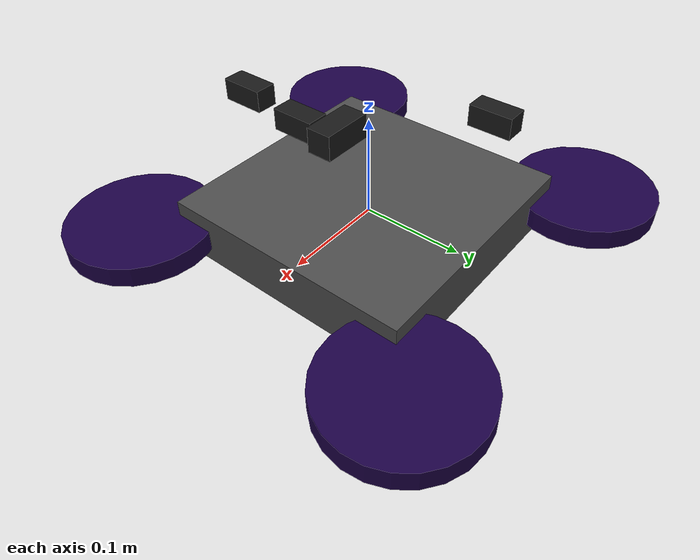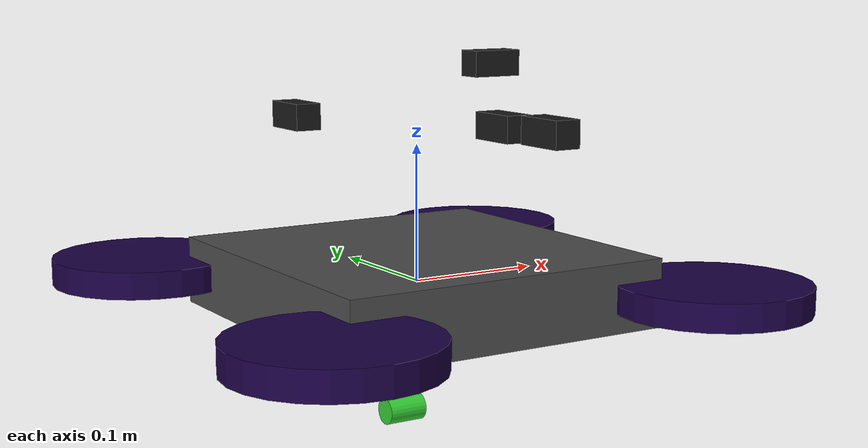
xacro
<?xml version="3.0"?>
<robot xmlns:xacro="http://wiki.ros.org/xacro" name="Cypher_Drone_V3">

  <xacro:include filename="$(find cypher_drone_description)/models/cypher/xacro/propellers.xacro"/>
  <xacro:include filename="$(find cypher_drone_description)/models/cypher/xacro/cameras.xacro"/>

  <link name="base_link">
    <visual>
      <origin xyz="0 0 0" rpy="0 0 0"/>
      <geometry>
        <box size="0.25 0.25 0.05"/>
      </geometry>
      <material name="body_material">
        <color rgba="0.3 0.3 0.3 1.0"/>
      </material>
    </visual>
    <collision>
      <origin xyz="0 0 0" rpy="0 0 0"/>
      <geometry>
        <box size="0.25 0.25 0.05"/>
      </geometry>
    </collision>
    <inertial>
      <origin xyz="0 0 0" rpy="0 0 0"/>
      <mass value="1.2"/>
      <inertia
        ixx="0.02" ixy="0" ixz="0"
        iyy="0.02" iyz="0"
        izz="0.03"/>
    </inertial>
  </link>

  <link name="imu_link"/>
  <joint name="base_link_to_imu" type="fixed">
    <parent link="base_link"/>
    <child  link="imu_link"/>
    <origin xyz="0.042523 0.031 0.0735" rpy="0 0 0"/>
  </joint>

  <xacro:property name="prop_force_offset"          value="0.0"/>
  <xacro:property name="prop_housing_radius"        value="0.07"/>
  <xacro:property name="prop_housing_height"        value="0.02"/>
  <xacro:property name="prop_housing_center_offset" value="0.15"/>

  <xacro:propellers
      name="front_left"
      parent="base_link"
      fb_reflect="1"
      lr_reflect="1"
      prop_force_offset="${prop_force_offset}"
      prop_housing_radius="${prop_housing_radius}"
      prop_housing_height="${prop_housing_height}"
      prop_housing_center_offset="${prop_housing_center_offset}"/>

  <xacro:propellers
      name="front_right"
      parent="base_link"
      fb_reflect="1"
      lr_reflect="-1"
      prop_force_offset="${prop_force_offset}"
      prop_housing_radius="${prop_housing_radius}"
      prop_housing_height="${prop_housing_height}"
      prop_housing_center_offset="${prop_housing_center_offset}"/>

  <xacro:propellers
      name="rear_left"
      parent="base_link"
      fb_reflect="-1"
      lr_reflect="1"
      prop_force_offset="${prop_force_offset}"
      prop_housing_radius="${prop_housing_radius}"
      prop_housing_height="${prop_housing_height}"
      prop_housing_center_offset="${prop_housing_center_offset}"/>

  <xacro:propellers
      name="rear_right"
      parent="base_link"
      fb_reflect="-1"
      lr_reflect="-1"
      prop_force_offset="${prop_force_offset}"
      prop_housing_radius="${prop_housing_radius}"
      prop_housing_height="${prop_housing_height}"
      prop_housing_center_offset="${prop_housing_center_offset}"/>

  <xacro:cypher_cameras_block parent="base_link"/>

</robot>

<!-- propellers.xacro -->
<robot name="Cypher_Drone_V3" xmlns:xacro="http://wiki.ros.org/xacro">

  <xacro:macro
      name="propellers"
      params="
      name
      parent
      fb_reflect
      lr_reflect
      prop_force_offset
      prop_housing_radius
      prop_housing_height
      prop_housing_center_offset
      ">
    <link name="${name}_propeller_link">
      <visual>
        <origin xyz="0 0 ${prop_force_offset}" rpy="0 0 0"/>
        <geometry>
          <cylinder radius="${prop_housing_radius}" length="${prop_housing_height}"/>
        </geometry>
        <material name="${name}_propeller-material">
          <color rgba="0.107 0.003676 0.2747 1"/>
        </material>
      </visual>
      <collision>
        <origin xyz="0 0 0.0091" rpy="0 0 0"/>
        <geometry>
          <cylinder radius="${prop_housing_radius}" length="${prop_housing_height}"/>
        </geometry>
      </collision>
      <inertial>
        <origin xyz="0 0 0.0091" rpy="0 0 0"/>
        <mass value="0.1"/>
        <inertia
          ixx="0.033333333" ixy="0" ixz="0"
          iyy="0.05"       iyz="0"
          izz="0.033333333"/>
      </inertial>
    </link>

    <joint name="${parent}_to_${name}_propeller_link" type="fixed">
      <parent link="${parent}"/>
      <child  link="${name}_propeller_link"/>
      <origin xyz="${fb_reflect * prop_housing_center_offset} ${lr_reflect * prop_housing_center_offset} 0" rpy="0 0 0"/>
    </joint>
  </xacro:macro>

</robot>

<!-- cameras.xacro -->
<robot xmlns:xacro="http://wiki.ros.org/xacro" name="Cypher_Drone_V3">

  <xacro:property name="front_realsense_xyz"  value="0.09597 0.0475 0.152542"/>
  <xacro:property name="left_realsense_xyz"   value="-0.0475 0.09597 0.115542"/>
  <xacro:property name="right_realsense_xyz"  value="0.0475 -0.09597 0.115542"/>
  <xacro:property name="front_cv_xyz"         value="0.05415 -0.03 0.112524"/>
  <xacro:property name="down_cv_xyz"          value="0.03345 0 -0.003333"/>
  <xacro:property name="rangefinder_xyz"      value="-0.001622 0.01792 -0.10135"/>

  <xacro:macro name="simple_camera"
               params="name parent xyz l_r l_p l_y j_r j_p j_y">
    <link name="${name}_link">
      <visual>
        <origin xyz="0 0 0" rpy="${l_r} ${l_p} ${l_y}"/>
        <geometry>
          <box size="0.04 0.02 0.02"/>
        </geometry>
        <material name="${name}_material">
          <color rgba="0.1 0.1 0.1 1.0"/>
        </material>
      </visual>
      <collision>
        <origin xyz="0 0 0" rpy="${l_r} ${l_p} ${l_y}"/>
        <geometry>
          <box size="0.04 0.02 0.02"/>
        </geometry>
      </collision>
      <inertial>
        <origin xyz="0 0 0" rpy="${l_r} ${l_p} ${l_y}"/>
        <mass value="0.05"/>
        <inertia
          ixx="1e-4" ixy="0" ixz="0"
          iyy="1e-4" iyz="0"
          izz="1e-4"/>
      </inertial>
    </link>

    <joint name="${parent}_to_${name}_joint" type="fixed">
      <parent link="${parent}"/>
      <child  link="${name}_link"/>
      <origin xyz="${xyz}" rpy="${j_r} ${j_p} ${j_y}"/>
    </joint>
  </xacro:macro>

  <xacro:macro name="rangefinder"
               params="name parent xyz j_r j_p j_y">
    <link name="${name}_link">
      <visual>
        <origin xyz="0 0 0" rpy="0 0 0"/>
        <geometry>
          <cylinder radius="0.01" length="0.03"/>
        </geometry>
        <material name="${name}_material">
          <color rgba="0.2 0.8 0.2 1.0"/>
        </material>
      </visual>
      <collision>
        <origin xyz="0 0 0" rpy="0 0 0"/>
        <geometry>
          <cylinder radius="0.01" length="0.03"/>
        </geometry>
      </collision>
      <inertial>
        <origin xyz="0 0 0" rpy="0 0 0"/>
        <mass value="0.03"/>
        <inertia
          ixx="5e-5" ixy="0" ixz="0"
          iyy="5e-5" iyz="0"
          izz="5e-5"/>
      </inertial>
    </link>

    <joint name="${parent}_to_${name}_joint" type="fixed">
      <parent link="${parent}"/>
      <child  link="${name}_link"/>
      <origin xyz="${xyz}" rpy="${j_r} ${j_p} ${j_y}"/>
    </joint>
  </xacro:macro>

  <xacro:macro name="cypher_cameras_block"
               params="parent">

    <xacro:simple_camera
      name="front_realsense"
      parent="${parent}"
      xyz="${front_realsense_xyz}"
      l_r="0"  l_p="0"   l_y="0"
      j_r="0"  j_p="0"   j_y="0"/>

    <xacro:simple_camera
      name="left_realsense"
      parent="${parent}"
      xyz="${left_realsense_xyz}"
      l_r="0"      l_p="0"      l_y="0"
      j_r="0"      j_p="0"      j_y="${pi/2}"/>

    <xacro:simple_camera
      name="right_realsense"
      parent="${parent}"
      xyz="${right_realsense_xyz}"
      l_r="0"       l_p="0"       l_y="0"
      j_r="0"       j_p="0"       j_y="${-pi/2}"/>

    <xacro:simple_camera
      name="front_cv"
      parent="${parent}"
      xyz="${front_cv_xyz}"
      l_r="${-pi/2}" l_p="0"       l_y="0"
      j_r="${-pi/2}" j_p="0"       j_y="${-pi/2}"/>

    <xacro:simple_camera
      name="down_cv"
      parent="${parent}"
      xyz="${down_cv_xyz}"
      l_r="0"        l_p="${pi}"   l_y="${pi/2}"
      j_r="0"        j_p="${pi}"   j_y="${pi/2}"/>

    <xacro:rangefinder
      name="rangefinder"
      parent="${parent}"
      xyz="${rangefinder_xyz}"
      j_r="0"
      j_p="${pi/2}"
      j_y="0"/>

  </xacro:macro>

</robot>
